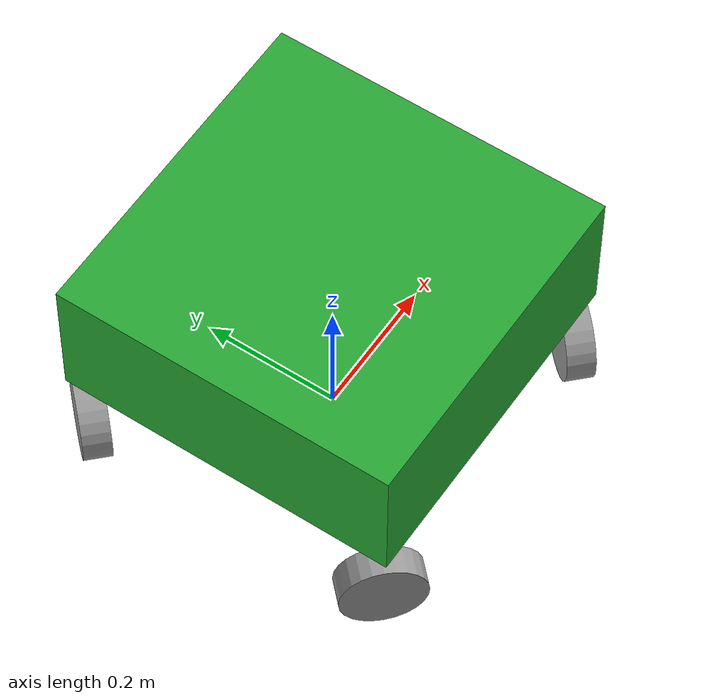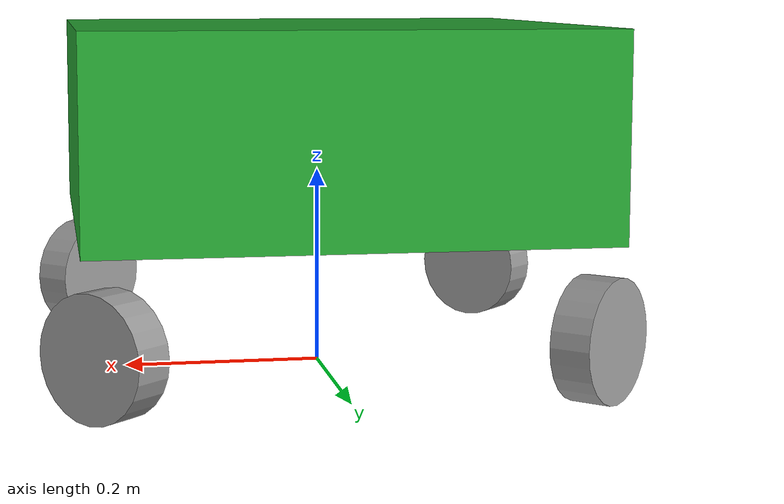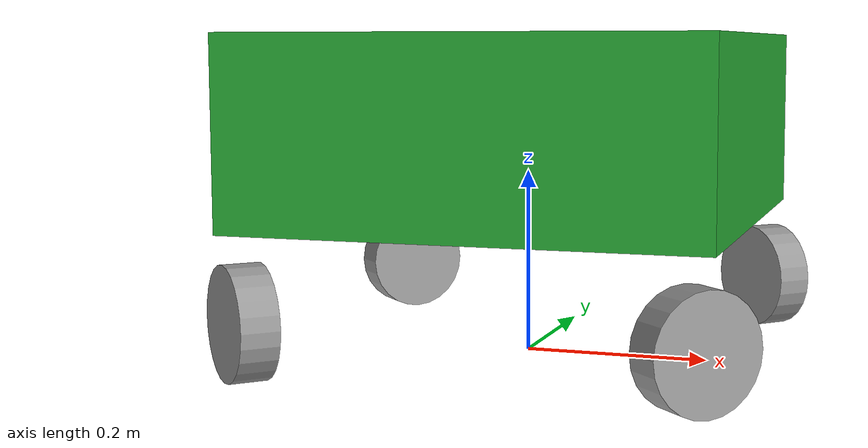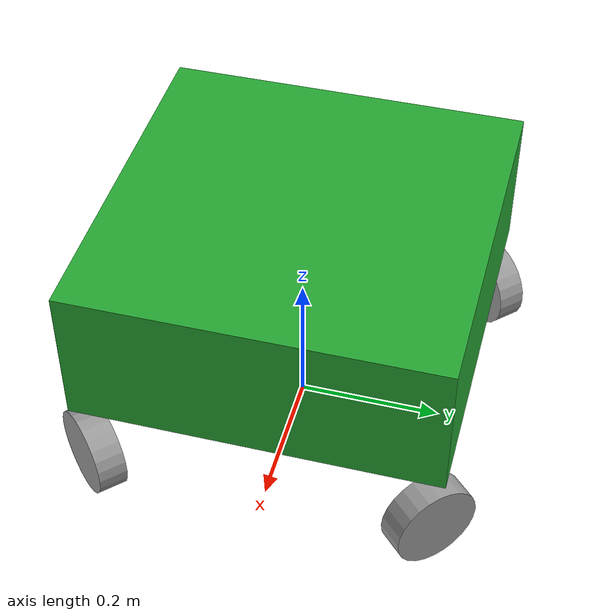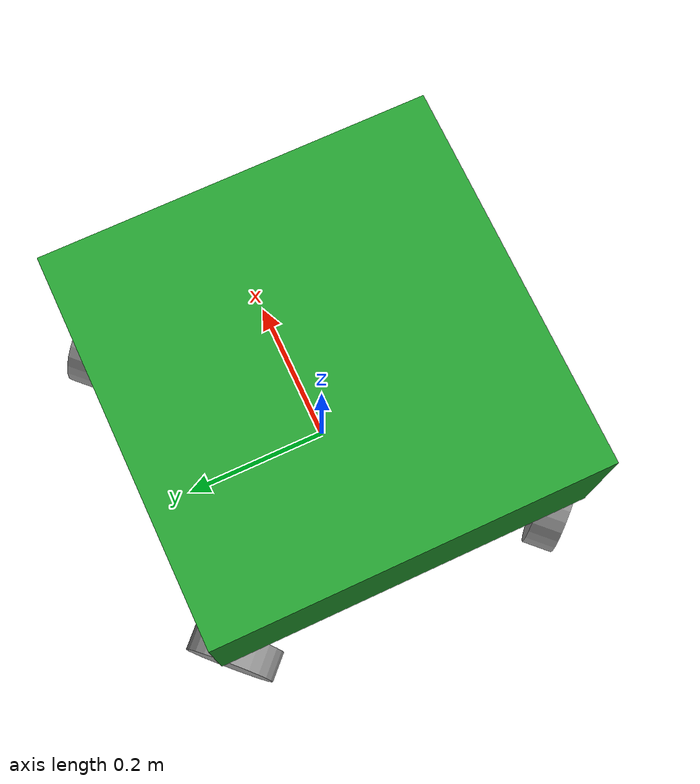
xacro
<?xml version="1.0"?>
<robot xmlns:xacro="https://www.ros.org/wiki/xacro">

    <!-- ========== 底盘尺寸 ========== -->
    <xacro:property name="base_length" value="0.5"/>
    <xacro:property name="base_width" value="0.5"/>
    <xacro:property name="base_height" value="0.2"/>

    <!-- ========== 全向轮尺寸 ========== -->
    <xacro:property name="wheel_radius" value="0.06"/>
    <xacro:property name="wheel_length" value="0.04"/>
    <xacro:property name="wheel_mass" value="0.5"/>

    <!-- 轮子到底盘底部的间隙 (m) -->
    <xacro:property name="wheel_chassis_gap" value="0.03"/>

    <!-- ========== 轮子宏 ========== -->
    <!-- 全向轮：圆柱体，旋转轴在 link 本地坐标系中沿 y 轴 -->
    <!-- 滚子垂直于主轮（沿 y 轴方向自由滑动） -->
    <!-- 关节 rpy 控制轮子在底盘坐标系中的朝向（X 型 45° 布局） -->
    <xacro:macro name="wheel_link" params="prefix color">
        <link name="${prefix}_wheel_link">
            <visual>
                <geometry>
                    <cylinder radius="${wheel_radius}" length="${wheel_length}"/>
                </geometry>
                <origin xyz="0 0 0" rpy="${pi/2.0} 0 0"/>
                <material name="${color}"/>
            </visual>
            <!-- cylinder 碰撞在 DART+ODE 中与非轴对齐平面碰撞时 AABB 溢出，注释备用 -->
            <collision>
                <geometry>
                    <cylinder radius="${wheel_radius}" length="${wheel_length}"/>
                </geometry>
                <origin xyz="0 0 0" rpy="${pi/2.0} 0 0"/>
            </collision>
            <xacro:cylinder_inertia m="${wheel_mass}" r="${wheel_radius}" l="${wheel_length}"
                                    o_xyz="0 0 0" o_rpy="${pi/2.0} 0 0"/>
        </link>
    </xacro:macro>

    <!-- ========== 基座标系 ========== -->
    <!-- DART 要求所有参与运动链的 link 必须有质量/惯性，
         否则 body node 位姿为 NaN → ODE 碰撞 AABB 溢出 -->
    <link name="base_footprint">
        <inertial>
            <mass value="0.001"/>
            <inertia ixx="1e-6" ixy="0" ixz="0" iyy="1e-6" iyz="0" izz="1e-6"/>
        </inertial>
    </link>

    <!-- ========== 底盘 link ========== -->
    <link name="base_link">
        <visual>
            <geometry>
                <box size="${base_length} ${base_width} ${base_height}"/>
            </geometry>
            <origin xyz="0 0 0" rpy="0 0 0"/>
            <material name="green"/>
        </visual>
        <collision>
            <geometry>
                <box size="${base_length} ${base_width} ${base_height}"/>
            </geometry>
            <origin xyz="0 0 0" rpy="0 0 0"/>
        </collision>
        <xacro:box_inertia m="8.0" x="${base_length}" y="${base_width}" z="${base_height}"
                           o_xyz="0 0 0" o_rpy="0 0 0"/>
    </link>

    <!-- ========== 四个全向轮 link ========== -->
    <xacro:wheel_link prefix="fl" color="grey"/>
    <xacro:wheel_link prefix="fr" color="grey"/>
    <xacro:wheel_link prefix="rl" color="grey"/>
    <xacro:wheel_link prefix="rr" color="grey"/>

    <!-- ========== 轮子关节（X 型全向轮布局） ========== -->
    <xacro:property name="wheel_x" value="${base_length/2.0 - wheel_length/2.0}"/>
    <xacro:property name="wheel_y" value="${base_width/2.0 - wheel_length/2.0}"/>
    <xacro:property name="wheel_z" value="${-(base_height/2.0 + wheel_radius + wheel_chassis_gap)}"/>

    <!-- FL (front-left, 左上)：轴朝向右前 → 指向 (0.707, 0.707, 0) -->
    <joint name="base_fl_wheel_joint" type="continuous">
        <parent link="base_link"/>
        <child link="fl_wheel_link"/>
        <origin xyz="${wheel_x} ${wheel_y} ${wheel_z}" rpy="0 0 ${-pi/4}"/>
        <axis xyz="0 1 0"/>
    </joint>

    <!-- FR (front-right, 右上)：轴朝向右侧 → 指向 (0.707, -0.707, 0) -->
    <joint name="base_fr_wheel_joint" type="continuous">
        <parent link="base_link"/>
        <child link="fr_wheel_link"/>
        <origin xyz="${wheel_x} ${-wheel_y} ${wheel_z}" rpy="0 0 ${-3*pi/4}"/>
        <axis xyz="0 1 0"/>
    </joint>

    <!-- RL (rear-left, 左下)：轴指向左后 → 指向 (-0.707, 0.707, 0) -->
    <joint name="base_rl_wheel_joint" type="continuous">
        <parent link="base_link"/>
        <child link="rl_wheel_link"/>
        <origin xyz="${-wheel_x} ${wheel_y} ${wheel_z}" rpy="0 0 ${pi/4}"/>
        <axis xyz="0 1 0"/>
    </joint>

    <!-- RR (rear-right, 右下)：轴指向左 → 指向 (-0.707, -0.707, 0) -->
    <joint name="base_rr_wheel_joint" type="continuous">
        <parent link="base_link"/>
        <child link="rr_wheel_link"/>
        <origin xyz="${-wheel_x} ${-wheel_y} ${wheel_z}" rpy="0 0 ${3*pi/4}"/>
        <axis xyz="0 1 0"/>
    </joint>

    <!-- ========== base_footprint → base_link（抬高底盘，轮子刚好触地） ========== -->
    <xacro:property name="base_lift" value="${base_height/2.0 + 2.0*wheel_radius + wheel_chassis_gap}"/>
    <joint name="base_joint" type="fixed">
        <parent link="base_footprint"/>
        <child link="base_link"/>
        <origin xyz="0 0 ${base_lift}" rpy="0 0 0"/>
    </joint>

</robot>
